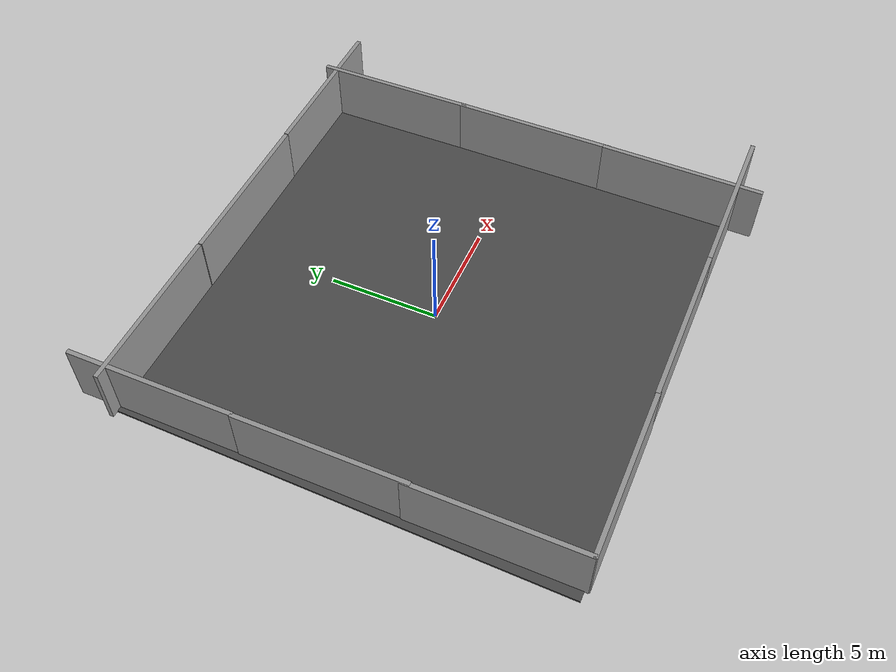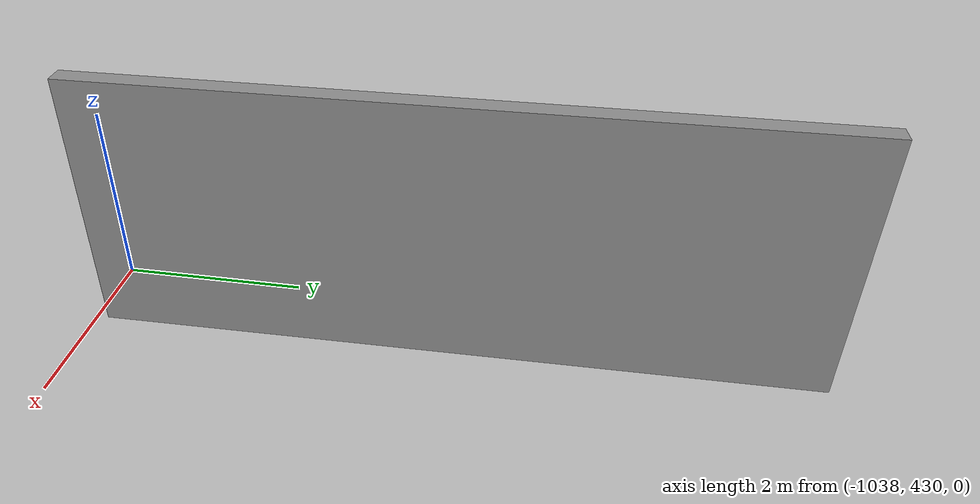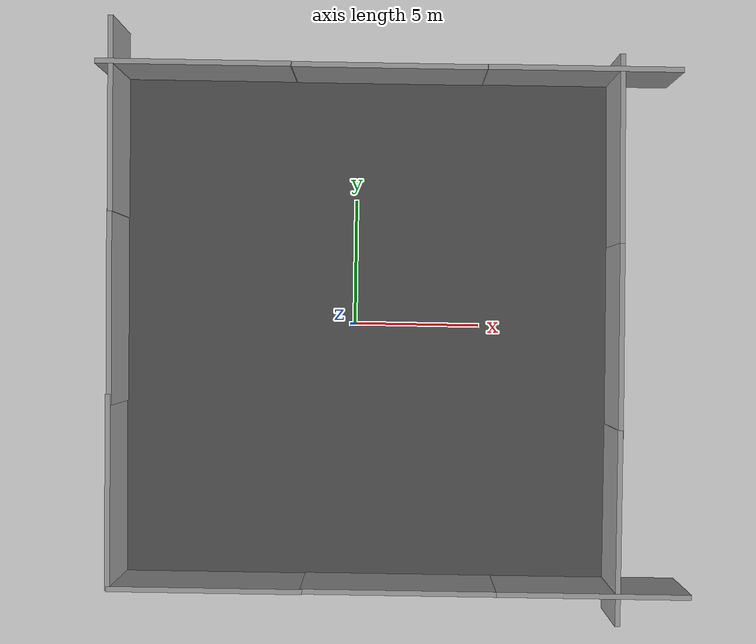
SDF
<sdf version="1.6">
 <world name="default">
  <light name="sun" type="directional">
   <pose>0 0 10 0 -0 0</pose>
   <diffuse>0.8 0.8 0.8 1</diffuse>
   <specular>0.2 0.2 0.2 1</specular>
   <attenuation>
    <range>1000</range>
    <constant>0.9</constant>
    <linear>0.01</linear>
    <quadratic>0.001</quadratic>
   </attenuation>
   <direction>-0.5 0.1 -0.9</direction>
  </light>
  <model name="ground_plane">
   <static>1</static>
   <link name="link">
    <collision name="collision">
     <geometry><plane><normal>0 0 1</normal><size>100 100</size></plane></geometry>
     <surface>
      <contact><collide_bitmask>65535</collide_bitmask></contact>
      <friction><ode><mu>100</mu><mu2>50</mu2></ode></friction>
     </surface>
    </collision>
    <visual name="visual">
     <cast_shadows>0</cast_shadows>
     <geometry><plane><normal>0 0 1</normal><size>100 100</size></plane></geometry>
     <material>
      <script><uri>file://media/materials/scripts/gazebo.material</uri><name>Gazebo/Grey</name></script>
     </material>
    </visual>
   </link>
  </model>
  <gravity>0 0 -9.8</gravity>
  <magnetic_field>6e-06 2.3e-05 -4.2e-05</magnetic_field>
  <atmosphere type="adiabatic"/>
  <physics name="default_physics" default="0" type="ode">
   <max_step_size>0.001</max_step_size>
   <real_time_factor>1</real_time_factor>
   <real_time_update_rate>1000</real_time_update_rate>
  </physics>
  <scene><ambient>0.4 0.4 0.4 1</ambient><background>0.7 0.7 0.7 1</background><shadows>1</shadows></scene>
  <spherical_coordinates>
   <surface_model>EARTH_WGS84</surface_model>
   <latitude_deg>0</latitude_deg>
   <longitude_deg>0</longitude_deg>
   <elevation>0</elevation>
   <heading_deg>0</heading_deg>
  </spherical_coordinates>
  <model name="asphalt_plane">
   <static>1</static>
   <link name="link">
    <collision name="collision"><geometry><box><size>20 20 0.1</size></box></geometry></collision>
    <visual name="visual">
     <cast_shadows>0</cast_shadows>
     <geometry><box><size>20 20 0.1</size></box></geometry>
     <material>
      <script>
       <uri>model://asphalt_plane/materials/scripts</uri>
       <uri>model://asphalt_plane/materials/textures</uri>
       <name>vrc/asphalt</name>
      </script>
     </material>
    </visual>
   </link>
   <pose>0.257776 -0.177897 0 0 -0 0</pose>
  </model>
  <model name="grey_wall">
   <static>1</static>
   <link name="link">
    <pose>0 0 1.4 0 -0 0</pose>
    <collision name="collision"><geometry><box><size>7.5 0.2 2.8</size></box></geometry></collision>
    <visual name="visual">
     <cast_shadows>0</cast_shadows>
     <geometry><box><size>7.5 0.2 2.8</size></box></geometry>
     <material>
      <script>
       <uri>model://grey_wall/materials/scripts</uri>
       <uri>model://grey_wall/materials/textures</uri>
       <name>vrc/grey_wall</name>
      </script>
     </material>
    </visual>
   </link>
   <pose>-6.2757 9.89284 0 0 -0 0</pose>
  </model>
  <model name="grey_wall_0">
   <static>1</static>
   <link name="link">
    <pose>0 0 1.4 0 -0 0</pose>
    <collision name="collision"><geometry><box><size>7.5 0.2 2.8</size></box></geometry></collision>
    <visual name="visual">
     <cast_shadows>0</cast_shadows>
     <geometry><box><size>7.5 0.2 2.8</size></box></geometry>
     <material>
      <script>
       <uri>model://grey_wall/materials/scripts</uri>
       <uri>model://grey_wall/materials/textures</uri>
       <name>vrc/grey_wall</name>
      </script>
     </material>
    </visual>
   </link>
   <pose>1.25468 9.88133 0 0 -0 0</pose>
  </model>
  <model name="grey_wall_1">
   <static>1</static>
   <link name="link">
    <pose>0 0 1.4 0 -0 0</pose>
    <collision name="collision"><geometry><box><size>7.5 0.2 2.8</size></box></geometry></collision>
    <visual name="visual">
     <cast_shadows>0</cast_shadows>
     <geometry><box><size>7.5 0.2 2.8</size></box></geometry>
     <material>
      <script>
       <uri>model://grey_wall/materials/scripts</uri>
       <uri>model://grey_wall/materials/textures</uri>
       <name>vrc/grey_wall</name>
      </script>
     </material>
    </visual>
   </link>
   <pose>8.77719 9.90082 0 0 -0 0</pose>
  </model>
  <model name="grey_wall_2">
   <static>1</static>
   <link name="link">
    <pose>0 0 1.4 0 -0 0</pose>
    <collision name="collision"><geometry><box><size>7.5 0.2 2.8</size></box></geometry></collision>
    <visual name="visual">
     <cast_shadows>0</cast_shadows>
     <geometry><box><size>7.5 0.2 2.8</size></box></geometry>
     <material>
      <script>
       <uri>model://grey_wall/materials/scripts</uri>
       <uri>model://grey_wall/materials/textures</uri>
       <name>vrc/grey_wall</name>
      </script>
     </material>
    </visual>
   </link>
   <pose>-5.52777 -10.2785 0 0 -0 0</pose>
  </model>
  <model name="grey_wall_3">
   <static>1</static>
   <link name="link">
    <pose>0 0 1.4 0 -0 0</pose>
    <collision name="collision"><geometry><box><size>7.5 0.2 2.8</size></box></geometry></collision>
    <visual name="visual">
     <cast_shadows>0</cast_shadows>
     <geometry><box><size>7.5 0.2 2.8</size></box></geometry>
     <material>
      <script>
       <uri>model://grey_wall/materials/scripts</uri>
       <uri>model://grey_wall/materials/textures</uri>
       <name>vrc/grey_wall</name>
      </script>
     </material>
    </visual>
   </link>
   <pose>1.89159 -10.2549 0 0 -0 0</pose>
  </model>
  <model name="grey_wall_4">
   <static>1</static>
   <link name="link">
    <pose>0 0 1.4 0 -0 0</pose>
    <collision name="collision"><geometry><box><size>7.5 0.2 2.8</size></box></geometry></collision>
    <visual name="visual">
     <cast_shadows>0</cast_shadows>
     <geometry><box><size>7.5 0.2 2.8</size></box></geometry>
     <material>
      <script>
       <uri>model://grey_wall/materials/scripts</uri>
       <uri>model://grey_wall/materials/textures</uri>
       <name>vrc/grey_wall</name>
      </script>
     </material>
    </visual>
   </link>
   <pose>9.3647 -10.2561 0 0 -0 0</pose>
  </model>
  <model name="grey_wall_5">
   <static>1</static>
   <link name="link">
    <pose>0 0 1.4 0 -0 0</pose>
    <collision name="collision"><geometry><box><size>7.5 0.2 2.8</size></box></geometry></collision>
    <visual name="visual">
     <cast_shadows>0</cast_shadows>
     <geometry><box><size>7.5 0.2 2.8</size></box></geometry>
     <material>
      <script>
       <uri>model://grey_wall/materials/scripts</uri>
       <uri>model://grey_wall/materials/textures</uri>
       <name>vrc/grey_wall</name>
      </script>
     </material>
    </visual>
   </link>
   <pose>-9.26679 -6.58242 0 0 -0 1.5847</pose>
  </model>
  <model name="grey_wall_5_clone">
   <static>1</static>
   <link name="link">
    <pose>0 0 1.4 0 -0 0</pose>
    <collision name="collision"><geometry><box><size>7.5 0.2 2.8</size></box></geometry></collision>
    <visual name="visual">
     <cast_shadows>0</cast_shadows>
     <geometry><box><size>7.5 0.2 2.8</size></box></geometry>
     <material>
      <script>
       <uri>model://grey_wall/materials/scripts</uri>
       <uri>model://grey_wall/materials/textures</uri>
       <name>vrc/grey_wall</name>
      </script>
     </material>
    </visual>
   </link>
   <pose>-1037.3 433.867 0 0 -0 1.5847</pose>
  </model>
  <model name="grey_wall_5_clone_0">
   <static>1</static>
   <link name="link">
    <pose>0 0 1.4 0 -0 0</pose>
    <collision name="collision"><geometry><box><size>7.5 0.2 2.8</size></box></geometry></collision>
    <visual name="visual">
     <cast_shadows>0</cast_shadows>
     <geometry><box><size>7.5 0.2 2.8</size></box></geometry>
     <material>
      <script>
       <uri>model://grey_wall/materials/scripts</uri>
       <uri>model://grey_wall/materials/textures</uri>
       <name>vrc/grey_wall</name>
      </script>
     </material>
    </visual>
   </link>
   <pose>-9.39217 7.90333 0 0 -0 1.5847</pose>
  </model>
  <model name="grey_wall_5_clone_1">
   <static>1</static>
   <link name="link">
    <pose>0 0 1.4 0 -0 0</pose>
    <collision name="collision"><geometry><box><size>7.5 0.2 2.8</size></box></geometry></collision>
    <visual name="visual">
     <cast_shadows>0</cast_shadows>
     <geometry><box><size>7.5 0.2 2.8</size></box></geometry>
     <material>
      <script>
       <uri>model://grey_wall/materials/scripts</uri>
       <uri>model://grey_wall/materials/textures</uri>
       <name>vrc/grey_wall</name>
      </script>
     </material>
    </visual>
   </link>
   <pose>-9.32005 0.490501 0 0 -0 1.5847</pose>
  </model>
  <model name="grey_wall_6">
   <static>1</static>
   <link name="link">
    <pose>0 0 1.4 0 -0 0</pose>
    <collision name="collision"><geometry><box><size>7.5 0.2 2.8</size></box></geometry></collision>
    <visual name="visual">
     <cast_shadows>0</cast_shadows>
     <geometry><box><size>7.5 0.2 2.8</size></box></geometry>
     <material>
      <script>
       <uri>model://grey_wall/materials/scripts</uri>
       <uri>model://grey_wall/materials/textures</uri>
       <name>vrc/grey_wall</name>
      </script>
     </material>
    </visual>
   </link>
   <pose>10.2986 -7.65444 0 0 -0 1.57043</pose>
  </model>
  <model name="grey_wall_5_clone_2">
   <static>1</static>
   <link name="link">
    <pose>0 0 1.4 0 -0 0</pose>
    <collision name="collision"><geometry><box><size>7.5 0.2 2.8</size></box></geometry></collision>
    <visual name="visual">
     <cast_shadows>0</cast_shadows>
     <geometry><box><size>7.5 0.2 2.8</size></box></geometry>
     <material>
      <script>
       <uri>model://grey_wall/materials/scripts</uri>
       <uri>model://grey_wall/materials/textures</uri>
       <name>vrc/grey_wall</name>
      </script>
     </material>
    </visual>
   </link>
   <pose>10.2884 -0.504836 0 0 -0 1.57758</pose>
  </model>
  <model name="grey_wall_5_clone_3">
   <static>1</static>
   <link name="link">
    <pose>0 0 1.4 0 -0 0</pose>
    <collision name="collision"><geometry><box><size>7.5 0.2 2.8</size></box></geometry></collision>
    <visual name="visual">
     <cast_shadows>0</cast_shadows>
     <geometry><box><size>7.5 0.2 2.8</size></box></geometry>
     <material>
      <script>
       <uri>model://grey_wall/materials/scripts</uri>
       <uri>model://grey_wall/materials/textures</uri>
       <name>vrc/grey_wall</name>
      </script>
     </material>
    </visual>
   </link>
   <pose>10.2153 6.72866 0 0 -0 1.5847</pose>
  </model>
 </world>
</sdf>
